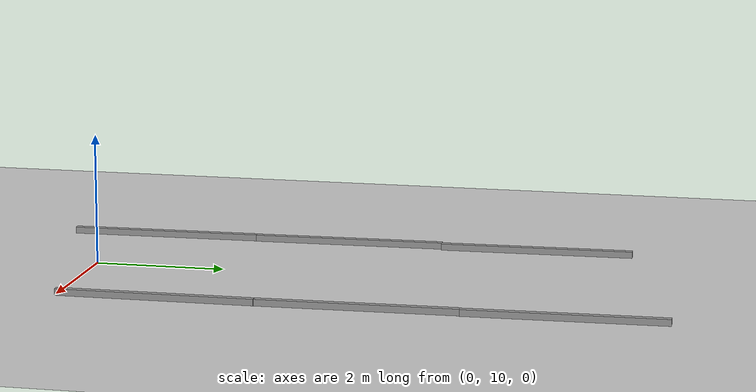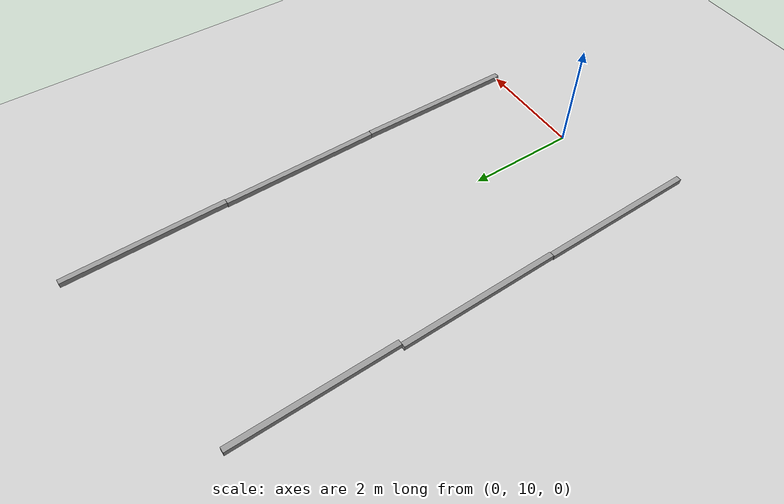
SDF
<sdf version="1.6">
 <world name="default">
  <model name="ground_plane">
   <static>1</static>
   <link name="link">
    <collision name="collision">
     <geometry><plane><normal>0 0 1</normal><size>100 100</size></plane></geometry>
     <surface>
      <contact><collide_bitmask>65535</collide_bitmask></contact>
      <friction><ode><mu>100</mu><mu2>50</mu2></ode></friction>
     </surface>
    </collision>
    <visual name="visual">
     <cast_shadows>0</cast_shadows>
     <geometry><plane><normal>0 0 1</normal><size>100 100</size></plane></geometry>
     <material>
      <script><uri>file://media/materials/scripts/gazebo.material</uri><name>Gazebo/Grey</name></script>
     </material>
    </visual>
   </link>
  </model>
  <model name="ruler_y">
   <link name="link_2">
    <inertial>
     <mass>1</mass>
     <inertia>
      <ixx>0.166667</ixx>
      <ixy>0</ixy>
      <ixz>0</ixz>
      <iyy>0.166667</iyy>
      <iyz>0</iyz>
      <izz>0.166667</izz>
     </inertia>
    </inertial>
    <visual name="visual">
     <geometry><box><size>0.1 3 0.1</size></box></geometry>
     <material>
      <lighting>1</lighting>
      <script><uri>file://media/materials/scripts/gazebo.material</uri><name>Gazebo/Grey</name></script>
      <shader type="vertex"><normal_map>__default__</normal_map></shader>
      <ambient>0.3 0.3 0.3 1</ambient>
      <diffuse>0.7 0.7 0.7 1</diffuse>
      <specular>0.01 0.01 0.01 1</specular>
      <emissive>0 0 0 1</emissive>
     </material>
    </visual>
    <collision name="collision">
     <geometry><box><size>0.1 3 0.1</size></box></geometry>
     <surface>
      <friction>
       <ode><mu>1</mu><mu2>1</mu2><fdir1>0 0 0</fdir1><slip1>0</slip1><slip2>0</slip2></ode>
       <torsional>
        <coefficient>1</coefficient>
        <patch_radius>0</patch_radius>
        <surface_radius>0</surface_radius>
        <use_patch_radius>1</use_patch_radius>
        <ode><slip>0</slip></ode>
       </torsional>
      </friction>
      <bounce><restitution_coefficient>0</restitution_coefficient><threshold>1e+06</threshold></bounce>
      <contact>
       <collide_without_contact>0</collide_without_contact>
       <collide_without_contact_bitmask>1</collide_without_contact_bitmask>
       <collide_bitmask>1</collide_bitmask>
       <ode>
        <soft_cfm>0</soft_cfm>
        <soft_erp>0.2</soft_erp>
        <kp>1e+13</kp>
        <kd>1</kd>
        <max_vel>0.01</max_vel>
        <min_depth>0</min_depth>
       </ode>
       <bullet>
        <split_impulse>1</split_impulse>
        <split_impulse_penetration_threshold>-0.01</split_impulse_penetration_threshold>
        <soft_cfm>0</soft_cfm>
        <soft_erp>0.2</soft_erp>
        <kp>1e+13</kp>
        <kd>1</kd>
       </bullet>
      </contact>
     </surface>
    </collision>
   </link>
   <static>0</static>
   <plugin name="ruler_y" filename="ruler_y"/>
   <pose>-1.97709 10.5171 0.049602 0.000266 -6e-06 0.022572</pose>
  </model>
  <model name="ruler_y_clone">
   <link name="link_2">
    <inertial>
     <mass>1</mass>
     <inertia>
      <ixx>0.166667</ixx>
      <ixy>0</ixy>
      <ixz>0</ixz>
      <iyy>0.166667</iyy>
      <iyz>0</iyz>
      <izz>0.166667</izz>
     </inertia>
    </inertial>
    <visual name="visual">
     <geometry><box><size>0.1 3 0.1</size></box></geometry>
     <material>
      <lighting>1</lighting>
      <script><uri>file://media/materials/scripts/gazebo.material</uri><name>Gazebo/Grey</name></script>
      <shader type="vertex"><normal_map>__default__</normal_map></shader>
      <ambient>0.3 0.3 0.3 1</ambient>
      <diffuse>0.7 0.7 0.7 1</diffuse>
      <specular>0.01 0.01 0.01 1</specular>
      <emissive>0 0 0 1</emissive>
     </material>
    </visual>
    <collision name="collision">
     <geometry><box><size>0.1 3 0.1</size></box></geometry>
     <surface>
      <friction>
       <ode><mu>1</mu><mu2>1</mu2><fdir1>0 0 0</fdir1><slip1>0</slip1><slip2>0</slip2></ode>
       <torsional>
        <coefficient>1</coefficient>
        <patch_radius>0</patch_radius>
        <surface_radius>0</surface_radius>
        <use_patch_radius>1</use_patch_radius>
        <ode><slip>0</slip></ode>
       </torsional>
      </friction>
      <bounce><restitution_coefficient>0</restitution_coefficient><threshold>1e+06</threshold></bounce>
      <contact>
       <collide_without_contact>0</collide_without_contact>
       <collide_without_contact_bitmask>1</collide_without_contact_bitmask>
       <collide_bitmask>1</collide_bitmask>
       <ode>
        <soft_cfm>0</soft_cfm>
        <soft_erp>0.2</soft_erp>
        <kp>1e+13</kp>
        <kd>1</kd>
        <max_vel>0.01</max_vel>
        <min_depth>0</min_depth>
       </ode>
       <bullet>
        <split_impulse>1</split_impulse>
        <split_impulse_penetration_threshold>-0.01</split_impulse_penetration_threshold>
        <soft_cfm>0</soft_cfm>
        <soft_erp>0.2</soft_erp>
        <kp>1e+13</kp>
        <kd>1</kd>
       </bullet>
      </contact>
     </surface>
    </collision>
   </link>
   <static>0</static>
   <plugin name="ruler_y" filename="ruler_y"/>
   <pose>-2.04061 13.5167 0.049602 -0.000266 -6e-06 0.027159</pose>
  </model>
  <model name="ruler_y_clone_clone">
   <link name="link_2">
    <inertial>
     <mass>1</mass>
     <inertia>
      <ixx>0.166667</ixx>
      <ixy>0</ixy>
      <ixz>0</ixz>
      <iyy>0.166667</iyy>
      <iyz>0</iyz>
      <izz>0.166667</izz>
     </inertia>
    </inertial>
    <visual name="visual">
     <geometry><box><size>0.1 3 0.1</size></box></geometry>
     <material>
      <lighting>1</lighting>
      <script><uri>file://media/materials/scripts/gazebo.material</uri><name>Gazebo/Grey</name></script>
      <shader type="vertex"><normal_map>__default__</normal_map></shader>
      <ambient>0.3 0.3 0.3 1</ambient>
      <diffuse>0.7 0.7 0.7 1</diffuse>
      <specular>0.01 0.01 0.01 1</specular>
      <emissive>0 0 0 1</emissive>
     </material>
    </visual>
    <collision name="collision">
     <geometry><box><size>0.1 3 0.1</size></box></geometry>
     <surface>
      <friction>
       <ode><mu>1</mu><mu2>1</mu2><fdir1>0 0 0</fdir1><slip1>0</slip1><slip2>0</slip2></ode>
       <torsional>
        <coefficient>1</coefficient>
        <patch_radius>0</patch_radius>
        <surface_radius>0</surface_radius>
        <use_patch_radius>1</use_patch_radius>
        <ode><slip>0</slip></ode>
       </torsional>
      </friction>
      <bounce><restitution_coefficient>0</restitution_coefficient><threshold>1e+06</threshold></bounce>
      <contact>
       <collide_without_contact>0</collide_without_contact>
       <collide_without_contact_bitmask>1</collide_without_contact_bitmask>
       <collide_bitmask>1</collide_bitmask>
       <ode>
        <soft_cfm>0</soft_cfm>
        <soft_erp>0.2</soft_erp>
        <kp>1e+13</kp>
        <kd>1</kd>
        <max_vel>0.01</max_vel>
        <min_depth>0</min_depth>
       </ode>
       <bullet>
        <split_impulse>1</split_impulse>
        <split_impulse_penetration_threshold>-0.01</split_impulse_penetration_threshold>
        <soft_cfm>0</soft_cfm>
        <soft_erp>0.2</soft_erp>
        <kp>1e+13</kp>
        <kd>1</kd>
       </bullet>
      </contact>
     </surface>
    </collision>
   </link>
   <static>0</static>
   <plugin name="ruler_y" filename="ruler_y"/>
   <pose>-2.05827 16.5173 0.049602 0.000266 5e-06 0.025433</pose>
  </model>
  <model name="ruler_y_clone_1_clone">
   <link name="link_2">
    <inertial>
     <mass>1</mass>
     <inertia>
      <ixx>0.166667</ixx>
      <ixy>0</ixy>
      <ixz>0</ixz>
      <iyy>0.166667</iyy>
      <iyz>0</iyz>
      <izz>0.166667</izz>
     </inertia>
    </inertial>
    <visual name="visual">
     <geometry><box><size>0.1 3 0.1</size></box></geometry>
     <material>
      <lighting>1</lighting>
      <script><uri>file://media/materials/scripts/gazebo.material</uri><name>Gazebo/Grey</name></script>
      <shader type="vertex"><normal_map>__default__</normal_map></shader>
      <ambient>0.3 0.3 0.3 1</ambient>
      <diffuse>0.7 0.7 0.7 1</diffuse>
      <specular>0.01 0.01 0.01 1</specular>
      <emissive>0 0 0 1</emissive>
     </material>
    </visual>
    <collision name="collision">
     <geometry><box><size>0.1 3 0.1</size></box></geometry>
     <surface>
      <friction>
       <ode><mu>1</mu><mu2>1</mu2><fdir1>0 0 0</fdir1><slip1>0</slip1><slip2>0</slip2></ode>
       <torsional>
        <coefficient>1</coefficient>
        <patch_radius>0</patch_radius>
        <surface_radius>0</surface_radius>
        <use_patch_radius>1</use_patch_radius>
        <ode><slip>0</slip></ode>
       </torsional>
      </friction>
      <bounce><restitution_coefficient>0</restitution_coefficient><threshold>1e+06</threshold></bounce>
      <contact>
       <collide_without_contact>0</collide_without_contact>
       <collide_without_contact_bitmask>1</collide_without_contact_bitmask>
       <collide_bitmask>1</collide_bitmask>
       <ode>
        <soft_cfm>0</soft_cfm>
        <soft_erp>0.2</soft_erp>
        <kp>1e+13</kp>
        <kd>1</kd>
        <max_vel>0.01</max_vel>
        <min_depth>0</min_depth>
       </ode>
       <bullet>
        <split_impulse>1</split_impulse>
        <split_impulse_penetration_threshold>-0.01</split_impulse_penetration_threshold>
        <soft_cfm>0</soft_cfm>
        <soft_erp>0.2</soft_erp>
        <kp>1e+13</kp>
        <kd>1</kd>
       </bullet>
      </contact>
     </surface>
    </collision>
   </link>
   <static>0</static>
   <plugin name="ruler_y" filename="ruler_y"/>
   <pose>2.01622 11.4979 0.049602 0.000266 6e-06 0.004278</pose>
  </model>
  <model name="ruler_y_clone_1_clone_clone">
   <link name="link_2">
    <inertial>
     <mass>1</mass>
     <inertia>
      <ixx>0.166667</ixx>
      <ixy>0</ixy>
      <ixz>0</ixz>
      <iyy>0.166667</iyy>
      <iyz>0</iyz>
      <izz>0.166667</izz>
     </inertia>
    </inertial>
    <visual name="visual">
     <geometry><box><size>0.1 3 0.1</size></box></geometry>
     <material>
      <lighting>1</lighting>
      <script><uri>file://media/materials/scripts/gazebo.material</uri><name>Gazebo/Grey</name></script>
      <shader type="vertex"><normal_map>__default__</normal_map></shader>
      <ambient>0.3 0.3 0.3 1</ambient>
      <diffuse>0.7 0.7 0.7 1</diffuse>
      <specular>0.01 0.01 0.01 1</specular>
      <emissive>0 0 0 1</emissive>
     </material>
    </visual>
    <collision name="collision">
     <geometry><box><size>0.1 3 0.1</size></box></geometry>
     <surface>
      <friction>
       <ode><mu>1</mu><mu2>1</mu2><fdir1>0 0 0</fdir1><slip1>0</slip1><slip2>0</slip2></ode>
       <torsional>
        <coefficient>1</coefficient>
        <patch_radius>0</patch_radius>
        <surface_radius>0</surface_radius>
        <use_patch_radius>1</use_patch_radius>
        <ode><slip>0</slip></ode>
       </torsional>
      </friction>
      <bounce><restitution_coefficient>0</restitution_coefficient><threshold>1e+06</threshold></bounce>
      <contact>
       <collide_without_contact>0</collide_without_contact>
       <collide_without_contact_bitmask>1</collide_without_contact_bitmask>
       <collide_bitmask>1</collide_bitmask>
       <ode>
        <soft_cfm>0</soft_cfm>
        <soft_erp>0.2</soft_erp>
        <kp>1e+13</kp>
        <kd>1</kd>
        <max_vel>0.01</max_vel>
        <min_depth>0</min_depth>
       </ode>
       <bullet>
        <split_impulse>1</split_impulse>
        <split_impulse_penetration_threshold>-0.01</split_impulse_penetration_threshold>
        <soft_cfm>0</soft_cfm>
        <soft_erp>0.2</soft_erp>
        <kp>1e+13</kp>
        <kd>1</kd>
       </bullet>
      </contact>
     </surface>
    </collision>
   </link>
   <static>0</static>
   <plugin name="ruler_y" filename="ruler_y"/>
   <pose>1.97006 14.5008 0.049602 0.000266 -6e-06 0.02379</pose>
  </model>
  <model name="ruler_y_clone_1_clone_clone_clone_0">
   <link name="link_2">
    <inertial>
     <mass>1</mass>
     <inertia>
      <ixx>0.166667</ixx>
      <ixy>0</ixy>
      <ixz>0</ixz>
      <iyy>0.166667</iyy>
      <iyz>0</iyz>
      <izz>0.166667</izz>
     </inertia>
    </inertial>
    <visual name="visual">
     <geometry><box><size>0.1 3 0.1</size></box></geometry>
     <material>
      <lighting>1</lighting>
      <script><uri>file://media/materials/scripts/gazebo.material</uri><name>Gazebo/Grey</name></script>
      <shader type="vertex"><normal_map>__default__</normal_map></shader>
      <ambient>0.3 0.3 0.3 1</ambient>
      <diffuse>0.7 0.7 0.7 1</diffuse>
      <specular>0.01 0.01 0.01 1</specular>
      <emissive>0 0 0 1</emissive>
     </material>
    </visual>
    <collision name="collision">
     <geometry><box><size>0.1 3 0.1</size></box></geometry>
     <surface>
      <friction>
       <ode><mu>1</mu><mu2>1</mu2><fdir1>0 0 0</fdir1><slip1>0</slip1><slip2>0</slip2></ode>
       <torsional>
        <coefficient>1</coefficient>
        <patch_radius>0</patch_radius>
        <surface_radius>0</surface_radius>
        <use_patch_radius>1</use_patch_radius>
        <ode><slip>0</slip></ode>
       </torsional>
      </friction>
      <bounce><restitution_coefficient>0</restitution_coefficient><threshold>1e+06</threshold></bounce>
      <contact>
       <collide_without_contact>0</collide_without_contact>
       <collide_without_contact_bitmask>1</collide_without_contact_bitmask>
       <collide_bitmask>1</collide_bitmask>
       <ode>
        <soft_cfm>0</soft_cfm>
        <soft_erp>0.2</soft_erp>
        <kp>1e+13</kp>
        <kd>1</kd>
        <max_vel>0.01</max_vel>
        <min_depth>0</min_depth>
       </ode>
       <bullet>
        <split_impulse>1</split_impulse>
        <split_impulse_penetration_threshold>-0.01</split_impulse_penetration_threshold>
        <soft_cfm>0</soft_cfm>
        <soft_erp>0.2</soft_erp>
        <kp>1e+13</kp>
        <kd>1</kd>
       </bullet>
      </contact>
     </surface>
    </collision>
   </link>
   <static>0</static>
   <plugin name="ruler_y" filename="ruler_y"/>
   <pose>1.90873 17.5004 0.049602 0.000266 -6e-06 0.027586</pose>
  </model>
 </world>
</sdf>
